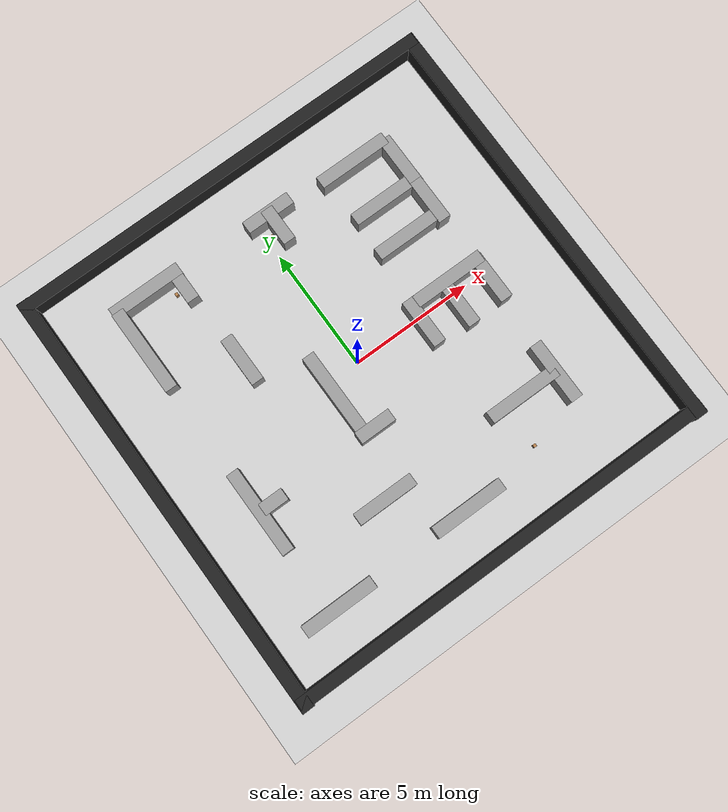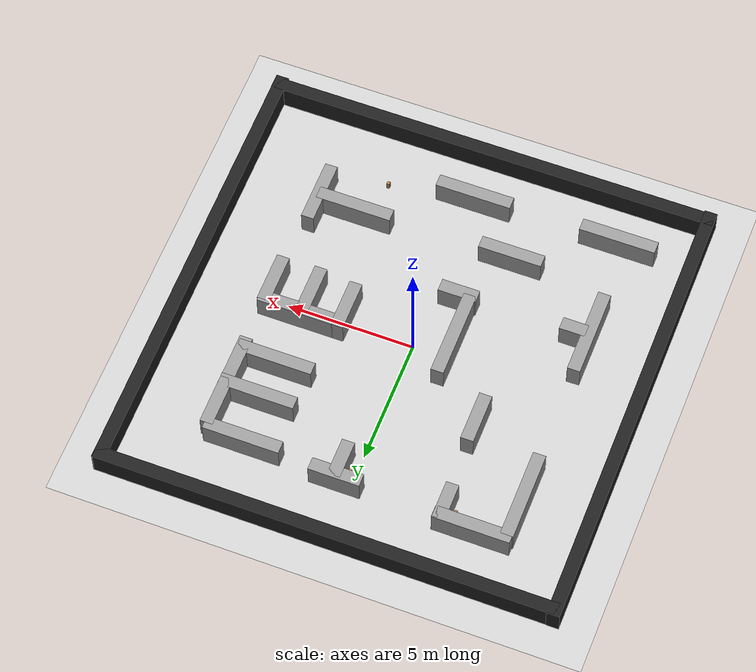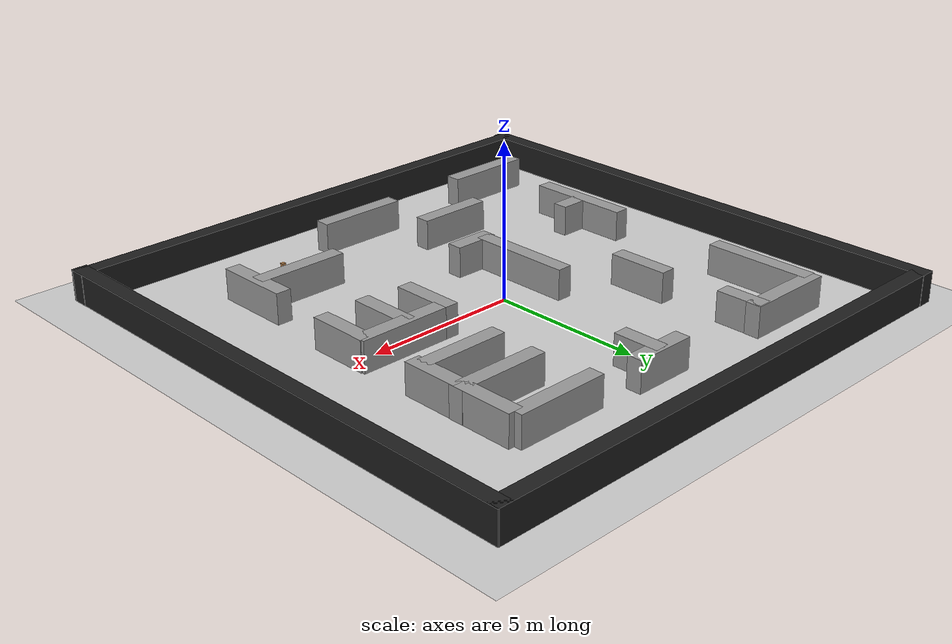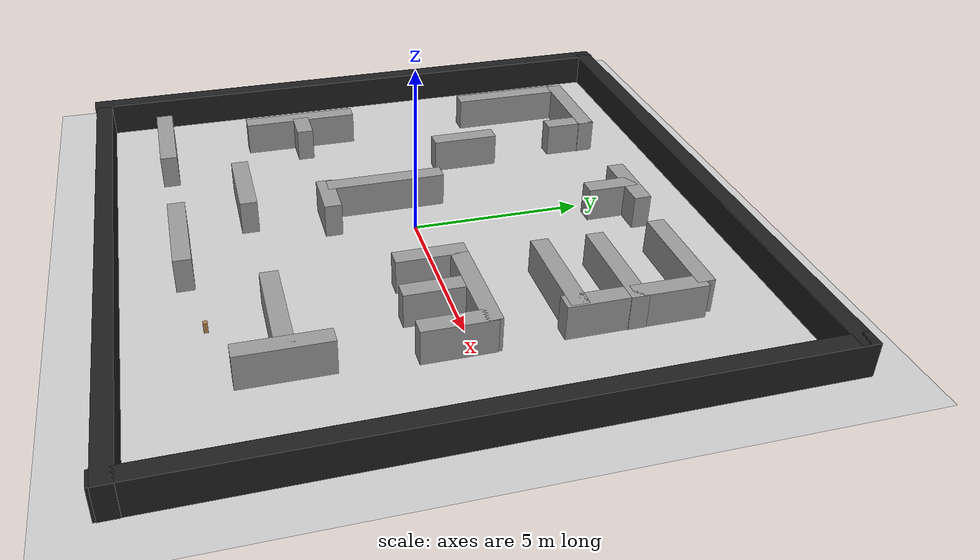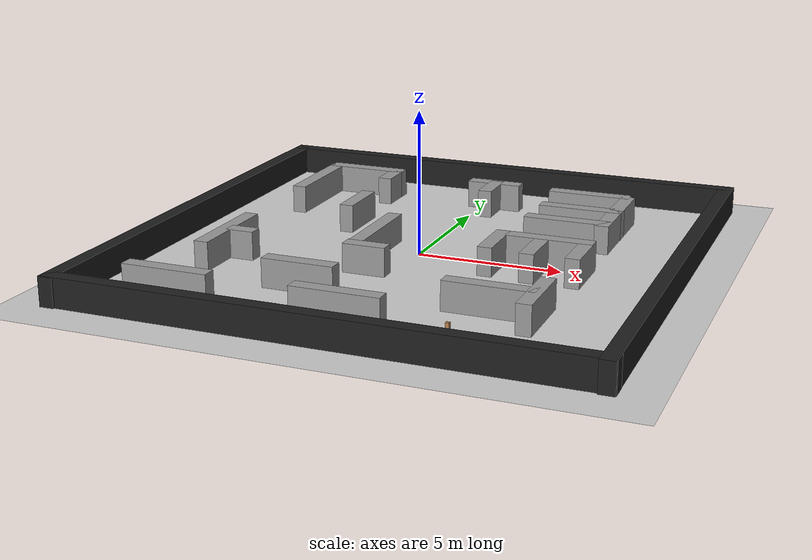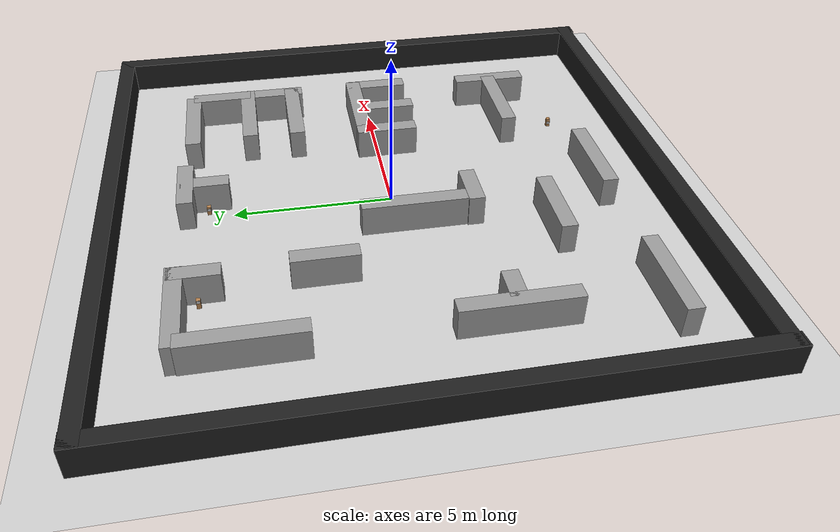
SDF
<sdf version="1.7">
 <world name="default">
  <light name="sun" type="directional">
   <pose>0 0 10 0 -0 0</pose>
   <diffuse>0.8 0.8 0.8 1</diffuse>
   <specular>0.2 0.2 0.2 1</specular>
   <attenuation>
    <range>1000</range>
    <constant>0.9</constant>
    <linear>0.01</linear>
    <quadratic>0.001</quadratic>
   </attenuation>
   <direction>-0.5 0.1 -0.9</direction>
   <spot><inner_angle>0</inner_angle><outer_angle>0</outer_angle><falloff>0</falloff></spot>
  </light>
  <model name="ground_plane">
   <static>1</static>
   <link name="link">
    <collision name="collision">
     <geometry><plane><normal>0 0 1</normal><size>100 100</size></plane></geometry>
     <surface><friction><ode><mu>100</mu><mu2>50</mu2></ode></friction></surface>
    </collision>
    <visual name="visual">
     <cast_shadows>0</cast_shadows>
     <geometry><plane><normal>0 0 1</normal><size>100 100</size></plane></geometry>
     <material>
      <script><uri>file://media/materials/scripts/gazebo.material</uri><name>Gazebo/Grey</name></script>
     </material>
    </visual>
   </link>
  </model>
  <gravity>0 0 -9.8</gravity>
  <magnetic_field>6e-06 2.3e-05 -4.2e-05</magnetic_field>
  <atmosphere type="adiabatic"/>
  <physics type="ode">
   <max_step_size>0.001</max_step_size>
   <real_time_factor>1</real_time_factor>
   <real_time_update_rate>1000</real_time_update_rate>
  </physics>
  <scene><ambient>0.4 0.4 0.4 1</ambient><background>0.7 0.7 0.7 1</background><shadows>1</shadows></scene>
  <audio><device>default</device></audio>
  <spherical_coordinates>
   <surface_model>EARTH_WGS84</surface_model>
   <latitude_deg>0</latitude_deg>
   <longitude_deg>0</longitude_deg>
   <elevation>0</elevation>
   <heading_deg>0</heading_deg>
  </spherical_coordinates>
  <model name="h5">
   <static>1</static>
   <pose>5.7234 5.19074 0.5 0 -0 0</pose>
   <link name="link">
    <inertial>
     <mass>1</mass>
     <inertia>
      <ixx>0.166667</ixx>
      <ixy>0</ixy>
      <ixz>0</ixz>
      <iyy>0.166667</iyy>
      <iyz>0</iyz>
      <izz>0.166667</izz>
     </inertia>
    </inertial>
    <collision name="collision"><geometry><box><size>0.5 2 1</size></box></geometry></collision>
    <visual name="visual">
     <geometry><box><size>0.5 2 1</size></box></geometry>
     <material>
      <script><name>Gazebo/Grey</name><uri>file://media/materials/scripts/gazebo.material</uri></script>
     </material>
    </visual>
   </link>
  </model>
  <model name="h6">
   <static>1</static>
   <pose>0.576546 5.8095 0.5 0 -0 0</pose>
   <link name="link">
    <inertial>
     <mass>1</mass>
     <inertia>
      <ixx>0.166667</ixx>
      <ixy>0</ixy>
      <ixz>0</ixz>
      <iyy>0.166667</iyy>
      <iyz>0</iyz>
      <izz>0.166667</izz>
     </inertia>
    </inertial>
    <collision name="collision"><geometry><box><size>0.5 1.5 1</size></box></geometry></collision>
    <visual name="visual">
     <geometry><box><size>0.5 1.5 1</size></box></geometry>
     <material>
      <script><name>Gazebo/Grey</name><uri>file://media/materials/scripts/gazebo.material</uri></script>
     </material>
    </visual>
   </link>
  </model>
  <model name="h7">
   <static>1</static>
   <pose>-3.57564 6.08723 0.5 0 -0 0</pose>
   <link name="link">
    <inertial>
     <mass>1</mass>
     <inertia>
      <ixx>0.166667</ixx>
      <ixy>0</ixy>
      <ixz>0</ixz>
      <iyy>0.166667</iyy>
      <iyz>0</iyz>
      <izz>0.166667</izz>
     </inertia>
    </inertial>
    <collision name="collision"><geometry><box><size>0.5 1.5 1</size></box></geometry></collision>
    <visual name="visual">
     <geometry><box><size>0.5 1.5 1</size></box></geometry>
     <material>
      <script><name>Gazebo/Grey</name><uri>file://media/materials/scripts/gazebo.material</uri></script>
     </material>
    </visual>
   </link>
  </model>
  <model name="h9">
   <static>1</static>
   <pose>5.57304 -4.62187 0.5 0 -0 0</pose>
   <link name="link">
    <inertial>
     <mass>1</mass>
     <inertia>
      <ixx>0.166667</ixx>
      <ixy>0</ixy>
      <ixz>0</ixz>
      <iyy>0.166667</iyy>
      <iyz>0</iyz>
      <izz>0.166667</izz>
     </inertia>
    </inertial>
    <collision name="collision"><geometry><box><size>0.5 2.5 1</size></box></geometry></collision>
    <visual name="visual">
     <geometry><box><size>0.5 2.5 1</size></box></geometry>
     <material>
      <script><name>Gazebo/Grey</name><uri>file://media/materials/scripts/gazebo.material</uri></script>
     </material>
    </visual>
   </link>
  </model>
  <model name="h10">
   <static>1</static>
   <pose>-1.39431 -0.583172 0.5 0 -0 0</pose>
   <link name="link">
    <inertial>
     <mass>1</mass>
     <inertia>
      <ixx>0.166667</ixx>
      <ixy>0</ixy>
      <ixz>0</ixz>
      <iyy>0.166667</iyy>
      <iyz>0</iyz>
      <izz>0.166667</izz>
     </inertia>
    </inertial>
    <collision name="collision"><geometry><box><size>0.5 3.5 1</size></box></geometry></collision>
    <visual name="visual">
     <geometry><box><size>0.5 3.5 1</size></box></geometry>
     <material>
      <script><name>Gazebo/Grey</name><uri>file://media/materials/scripts/gazebo.material</uri></script>
     </material>
    </visual>
   </link>
  </model>
  <model name="h11">
   <static>1</static>
   <pose>-3.41878 2.46589 0.5 0 -0 0</pose>
   <link name="link">
    <inertial>
     <mass>1</mass>
     <inertia>
      <ixx>0.166667</ixx>
      <ixy>0</ixy>
      <ixz>0</ixz>
      <iyy>0.166667</iyy>
      <iyz>0</iyz>
      <izz>0.166667</izz>
     </inertia>
    </inertial>
    <collision name="collision"><geometry><box><size>0.5 2 1</size></box></geometry></collision>
    <visual name="visual">
     <geometry><box><size>0.5 2 1</size></box></geometry>
     <material>
      <script><name>Gazebo/Grey</name><uri>file://media/materials/scripts/gazebo.material</uri></script>
     </material>
    </visual>
   </link>
  </model>
  <model name="v13">
   <static>1</static>
   <pose>-0.938635 -2.3681 0.5 0 -0 0</pose>
   <link name="link">
    <inertial>
     <mass>1</mass>
     <inertia>
      <ixx>0.166667</ixx>
      <ixy>0</ixy>
      <ixz>0</ixz>
      <iyy>0.166667</iyy>
      <iyz>0</iyz>
      <izz>0.166667</izz>
     </inertia>
    </inertial>
    <collision name="collision"><geometry><box><size>1.5 0.5 1</size></box></geometry></collision>
    <visual name="visual">
     <geometry><box><size>1.5 0.5 1</size></box></geometry>
     <material>
      <script><name>Gazebo/Grey</name><uri>file://media/materials/scripts/gazebo.material</uri></script>
     </material>
    </visual>
   </link>
  </model>
  <model name="v15">
   <static>1</static>
   <pose>0.54972 6.40187 0.5 0 -0 0</pose>
   <link name="link">
    <inertial>
     <mass>1</mass>
     <inertia>
      <ixx>0.166667</ixx>
      <ixy>0</ixy>
      <ixz>0</ixz>
      <iyy>0.166667</iyy>
      <iyz>0</iyz>
      <izz>0.166667</izz>
     </inertia>
    </inertial>
    <collision name="collision"><geometry><box><size>2 0.5 1</size></box></geometry></collision>
    <visual name="visual">
     <geometry><box><size>2 0.5 1</size></box></geometry>
     <material>
      <script><name>Gazebo/Grey</name><uri>file://media/materials/scripts/gazebo.material</uri></script>
     </material>
    </visual>
   </link>
  </model>
  <model name="v16">
   <static>1</static>
   <pose>4.10503 -4.57932 0.5 0 -0 0</pose>
   <link name="link">
    <inertial>
     <mass>1</mass>
     <inertia>
      <ixx>0.166667</ixx>
      <ixy>0</ixy>
      <ixz>0</ixz>
      <iyy>0.166667</iyy>
      <iyz>0</iyz>
      <izz>0.166667</izz>
     </inertia>
    </inertial>
    <collision name="collision"><geometry><box><size>3 0.5 1</size></box></geometry></collision>
    <visual name="visual">
     <geometry><box><size>3 0.5 1</size></box></geometry>
     <material>
      <script><name>Gazebo/Grey</name><uri>file://media/materials/scripts/gazebo.material</uri></script>
     </material>
    </visual>
   </link>
  </model>
  <model name="v18">
   <static>1</static>
   <pose>-2.19002 -4.69612 0.5 0 -0 0</pose>
   <link name="link">
    <inertial>
     <mass>1</mass>
     <inertia>
      <ixx>0.166667</ixx>
      <ixy>0</ixy>
      <ixz>0</ixz>
      <iyy>0.166667</iyy>
      <iyz>0</iyz>
      <izz>0.166667</izz>
     </inertia>
    </inertial>
    <collision name="collision"><geometry><box><size>2.5 0.5 1</size></box></geometry></collision>
    <visual name="visual">
     <geometry><box><size>2.5 0.5 1</size></box></geometry>
     <material>
      <script><name>Gazebo/Grey</name><uri>file://media/materials/scripts/gazebo.material</uri></script>
     </material>
    </visual>
   </link>
  </model>
  <model name="v20">
   <static>1</static>
   <pose>-5.48278 -2.41567 0.5 0 -0 0</pose>
   <link name="link">
    <inertial>
     <mass>1</mass>
     <inertia>
      <ixx>0.166667</ixx>
      <ixy>0</ixy>
      <ixz>0</ixz>
      <iyy>0.166667</iyy>
      <iyz>0</iyz>
      <izz>0.166667</izz>
     </inertia>
    </inertial>
    <collision name="collision"><geometry><box><size>1 0.5 1</size></box></geometry></collision>
    <visual name="visual">
     <geometry><box><size>1 0.5 1</size></box></geometry>
     <material>
      <script><name>Gazebo/Grey</name><uri>file://media/materials/scripts/gazebo.material</uri></script>
     </material>
    </visual>
   </link>
  </model>
  <model name="aruco_column_6x6_100mm_42">
   <link name="link">
    <pose>0 0 0.15 0 -0 0</pose>
    <inertial>
     <mass>1</mass>
     <inertia><ixx>1</ixx><ixy>0</ixy><ixz>0</ixz><iyy>1</iyy><iyz>0</iyz><izz>1</izz></inertia>
    </inertial>
    <collision name="collision">
     <geometry><box><size>0.12 0.12 0.3</size></box></geometry>
     <surface>
      <contact>
       <poissons_ratio>0.347</poissons_ratio>
       <elastic_modulus>8.8e+09</elastic_modulus>
       <ode><kp>100000</kp><kd>1</kd><max_vel>1</max_vel><min_depth>0.001</min_depth></ode>
      </contact>
      <friction>
       <torsional>
        <coefficient>1</coefficient>
        <use_patch_radius>0</use_patch_radius>
        <surface_radius>0.05</surface_radius>
       </torsional>
      </friction>
     </surface>
    </collision>
    <visual name="visual">
     <geometry><box><size>0.12 0.12 0.3</size></box></geometry>
     <material>
      <script><uri>file://media/materials/scripts/gazebo.material</uri><name>Gazebo/Wood</name></script>
     </material>
    </visual>
   </link>
   <link name="aruco_6x6_100mm_42::main">
    <pose relative_to="aruco_6x6_100mm_42::__model__">0 0 0 0 -0 0</pose>
    <visual name="main_Visual">
     <geometry><box><size>0.1 0.1 0.001</size></box></geometry>
     <material>
      <script>
       <uri>file://media/materials/scripts</uri>
       <uri>file://media/materials/textures</uri>
       <name>aruco_6x6_100mm_42</name>
      </script>
     </material>
    </visual>
    <inertial>
     <inertia><ixx>1</ixx><ixy>0</ixy><ixz>0</ixz><iyy>1</iyy><iyz>0</iyz><izz>1</izz></inertia>
     <mass>1</mass>
    </inertial>
   </link>
   <frame name="aruco_6x6_100mm_42::__model__" attached_to="aruco_6x6_100mm_42::main">
    <pose relative_to="__model__">-0.06 0 0.24 3.14159 1.57079 3.14159</pose>
   </frame>
   <joint name="aruco_6x6_100mm_42_joint" type="fixed">
    <child>aruco_6x6_100mm_42::main</child>
    <parent>link</parent>
   </joint>
   <pose>-3.95817 6.03807 -0.001049 0 -0.000405 0</pose>
  </model>
  <model name="aruco_column_6x6_100mm_2">
   <link name="link">
    <pose>0 0 0.15 0 -0 0</pose>
    <inertial>
     <mass>1</mass>
     <inertia><ixx>1</ixx><ixy>0</ixy><ixz>0</ixz><iyy>1</iyy><iyz>0</iyz><izz>1</izz></inertia>
    </inertial>
    <collision name="collision">
     <geometry><box><size>0.12 0.12 0.3</size></box></geometry>
     <surface>
      <contact>
       <poissons_ratio>0.347</poissons_ratio>
       <elastic_modulus>8.8e+09</elastic_modulus>
       <ode><kp>100000</kp><kd>1</kd><max_vel>1</max_vel><min_depth>0.001</min_depth></ode>
      </contact>
      <friction>
       <torsional>
        <coefficient>1</coefficient>
        <use_patch_radius>0</use_patch_radius>
        <surface_radius>0.05</surface_radius>
       </torsional>
      </friction>
     </surface>
    </collision>
    <visual name="visual">
     <geometry><box><size>0.12 0.12 0.3</size></box></geometry>
     <material>
      <script><uri>file://media/materials/scripts/gazebo.material</uri><name>Gazebo/Wood</name></script>
     </material>
    </visual>
   </link>
   <link name="aruco_6x6_100mm_2::main">
    <pose relative_to="aruco_6x6_100mm_2::__model__">0 0 0 0 -0 0</pose>
    <visual name="main_Visual">
     <geometry><box><size>0.1 0.1 0.001</size></box></geometry>
     <material>
      <script>
       <uri>file://media/materials/scripts</uri>
       <uri>file://media/materials/textures</uri>
       <name>aruco_6x6_100mm_2</name>
      </script>
     </material>
    </visual>
    <inertial>
     <inertia><ixx>1</ixx><ixy>0</ixy><ixz>0</ixz><iyy>1</iyy><iyz>0</iyz><izz>1</izz></inertia>
     <mass>1</mass>
    </inertial>
   </link>
   <frame name="aruco_6x6_100mm_2::__model__" attached_to="aruco_6x6_100mm_2::main">
    <pose relative_to="__model__">-0.06 0 0.14 3.14159 1.57079 3.14159</pose>
   </frame>
   <joint name="aruco_6x6_100mm_2_joint" type="fixed">
    <child>aruco_6x6_100mm_2::main</child>
    <parent>link</parent>
   </joint>
   <pose>3.41786 -6.3316 -0.001049 0 -0.000405 0</pose>
  </model>
  <model name="aruco_column_6x6_100mm_0">
   <link name="link">
    <pose>0 0 0.15 0 -0 0</pose>
    <inertial>
     <mass>1</mass>
     <inertia><ixx>1</ixx><ixy>0</ixy><ixz>0</ixz><iyy>1</iyy><iyz>0</iyz><izz>1</izz></inertia>
    </inertial>
    <collision name="collision">
     <geometry><box><size>0.12 0.12 0.3</size></box></geometry>
     <surface>
      <contact>
       <poissons_ratio>0.347</poissons_ratio>
       <elastic_modulus>8.8e+09</elastic_modulus>
       <ode><kp>100000</kp><kd>1</kd><max_vel>1</max_vel><min_depth>0.001</min_depth></ode>
      </contact>
      <friction>
       <torsional>
        <coefficient>1</coefficient>
        <use_patch_radius>0</use_patch_radius>
        <surface_radius>0.05</surface_radius>
       </torsional>
      </friction>
     </surface>
    </collision>
    <visual name="visual">
     <geometry><box><size>0.12 0.12 0.3</size></box></geometry>
     <material>
      <script><uri>file://media/materials/scripts/gazebo.material</uri><name>Gazebo/Wood</name></script>
     </material>
    </visual>
   </link>
   <link name="aruco_6x6_100mm_0::main">
    <pose relative_to="aruco_6x6_100mm_0::__model__">0 0 0 0 -0 0</pose>
    <visual name="main_Visual">
     <geometry><box><size>0.1 0.1 0.001</size></box></geometry>
     <material>
      <script>
       <uri>file://media/materials/scripts</uri>
       <uri>file://media/materials/textures</uri>
       <name>aruco_6x6_100mm_0</name>
      </script>
     </material>
    </visual>
    <inertial>
     <inertia><ixx>1</ixx><ixy>0</ixy><ixz>0</ixz><iyy>1</iyy><iyz>0</iyz><izz>1</izz></inertia>
     <mass>1</mass>
    </inertial>
   </link>
   <frame name="aruco_6x6_100mm_0::__model__" attached_to="aruco_6x6_100mm_0::main">
    <pose relative_to="__model__">-0.06 0 0.19 3.14159 1.57079 3.14159</pose>
   </frame>
   <joint name="aruco_6x6_100mm_0_joint" type="fixed">
    <child>aruco_6x6_100mm_0::main</child>
    <parent>link</parent>
   </joint>
   <pose>0.213147 5.75606 -0.001049 0 -0.000405 0</pose>
  </model>
  <model name="h10_clone">
   <static>1</static>
   <pose>-6.10193 4.84313 0.5 0 -0 0</pose>
   <link name="link">
    <inertial>
     <mass>1</mass>
     <inertia>
      <ixx>0.166667</ixx>
      <ixy>0</ixy>
      <ixz>0</ixz>
      <iyy>0.166667</iyy>
      <iyz>0</iyz>
      <izz>0.166667</izz>
     </inertia>
    </inertial>
    <collision name="collision"><geometry><box><size>0.5 3.5 1</size></box></geometry></collision>
    <visual name="visual">
     <geometry><box><size>0.5 3.5 1</size></box></geometry>
     <material>
      <script><name>Gazebo/Grey</name><uri>file://media/materials/scripts/gazebo.material</uri></script>
     </material>
    </visual>
   </link>
  </model>
  <model name="h10_clone_0">
   <static>1</static>
   <pose>-6.07685 -2.4237 0.5 0 -0 0</pose>
   <link name="link">
    <inertial>
     <mass>1</mass>
     <inertia>
      <ixx>0.166667</ixx>
      <ixy>0</ixy>
      <ixz>0</ixz>
      <iyy>0.166667</iyy>
      <iyz>0</iyz>
      <izz>0.166667</izz>
     </inertia>
    </inertial>
    <collision name="collision"><geometry><box><size>0.5 3.5 1</size></box></geometry></collision>
    <visual name="visual">
     <geometry><box><size>0.5 3.5 1</size></box></geometry>
     <material>
      <script><name>Gazebo/Grey</name><uri>file://media/materials/scripts/gazebo.material</uri></script>
     </material>
    </visual>
   </link>
  </model>
  <model name="v16_clone">
   <static>1</static>
   <pose>-5.73731 -6.78479 0.5 0 -0 0</pose>
   <link name="link">
    <inertial>
     <mass>1</mass>
     <inertia>
      <ixx>0.166667</ixx>
      <ixy>0</ixy>
      <ixz>0</ixz>
      <iyy>0.166667</iyy>
      <iyz>0</iyz>
      <izz>0.166667</izz>
     </inertia>
    </inertial>
    <collision name="collision"><geometry><box><size>3 0.5 1</size></box></geometry></collision>
    <visual name="visual">
     <geometry><box><size>3 0.5 1</size></box></geometry>
     <material>
      <script><name>Gazebo/Grey</name><uri>file://media/materials/scripts/gazebo.material</uri></script>
     </material>
    </visual>
   </link>
  </model>
  <model name="v16_clone_0">
   <static>1</static>
   <pose>0.036909 -6.71651 0.5 0 -0 0</pose>
   <link name="link">
    <inertial>
     <mass>1</mass>
     <inertia>
      <ixx>0.166667</ixx>
      <ixy>0</ixy>
      <ixz>0</ixz>
      <iyy>0.166667</iyy>
      <iyz>0</iyz>
      <izz>0.166667</izz>
     </inertia>
    </inertial>
    <collision name="collision"><geometry><box><size>3 0.5 1</size></box></geometry></collision>
    <visual name="visual">
     <geometry><box><size>3 0.5 1</size></box></geometry>
     <material>
      <script><name>Gazebo/Grey</name><uri>file://media/materials/scripts/gazebo.material</uri></script>
     </material>
    </visual>
   </link>
  </model>
  <model name="h5_clone">
   <static>1</static>
   <pose>4.24781 -0.463245 0.5 0 -0 0</pose>
   <link name="link">
    <inertial>
     <mass>1</mass>
     <inertia>
      <ixx>0.166667</ixx>
      <ixy>0</ixy>
      <ixz>0</ixz>
      <iyy>0.166667</iyy>
      <iyz>0</iyz>
      <izz>0.166667</izz>
     </inertia>
    </inertial>
    <collision name="collision"><geometry><box><size>0.5 2 1</size></box></geometry></collision>
    <visual name="visual">
     <geometry><box><size>0.5 2 1</size></box></geometry>
     <material>
      <script><name>Gazebo/Grey</name><uri>file://media/materials/scripts/gazebo.material</uri></script>
     </material>
    </visual>
   </link>
  </model>
  <model name="v16_clone_0_clone">
   <static>1</static>
   <pose>-4.81128 6.62469 0.5 0 -0 0</pose>
   <link name="link">
    <inertial>
     <mass>1</mass>
     <inertia>
      <ixx>0.166667</ixx>
      <ixy>0</ixy>
      <ixz>0</ixz>
      <iyy>0.166667</iyy>
      <iyz>0</iyz>
      <izz>0.166667</izz>
     </inertia>
    </inertial>
    <collision name="collision"><geometry><box><size>3 0.5 1</size></box></geometry></collision>
    <visual name="visual">
     <geometry><box><size>3 0.5 1</size></box></geometry>
     <material>
      <script><name>Gazebo/Grey</name><uri>file://media/materials/scripts/gazebo.material</uri></script>
     </material>
    </visual>
   </link>
  </model>
  <model name="long_wall">
   <link name="link">
    <inertial>
     <mass>1</mass>
     <inertia>
      <ixx>0.166667</ixx>
      <ixy>0</ixy>
      <ixz>0</ixz>
      <iyy>0.166667</iyy>
      <iyz>0</iyz>
      <izz>0.166667</izz>
     </inertia>
    </inertial>
    <visual name="visual">
     <geometry><box><size>18 0.5 1</size></box></geometry>
     <material>
      <script><name>Gazebo/Black</name><uri>file://media/materials/scripts/gazebo.material</uri></script>
      <shader type="pixel"><normal_map>__default__</normal_map></shader>
      <ambient>0 0 0 1</ambient>
      <diffuse>0 0 0 1</diffuse>
      <specular>0.1 0.1 0.1 1</specular>
      <emissive>0 0 0 1</emissive>
     </material>
    </visual>
    <collision name="collision">
     <geometry><box><size>18 0.5 1</size></box></geometry>
     <surface>
      <friction>
       <ode><mu>1</mu><mu2>1</mu2><fdir1>0 0 0</fdir1><slip1>0</slip1><slip2>0</slip2></ode>
       <torsional>
        <coefficient>1</coefficient>
        <patch_radius>0</patch_radius>
        <surface_radius>0</surface_radius>
        <use_patch_radius>1</use_patch_radius>
        <ode><slip>0</slip></ode>
       </torsional>
      </friction>
      <bounce><restitution_coefficient>0</restitution_coefficient><threshold>1e+06</threshold></bounce>
      <contact>
       <collide_without_contact>0</collide_without_contact>
       <collide_without_contact_bitmask>1</collide_without_contact_bitmask>
       <collide_bitmask>1</collide_bitmask>
       <ode>
        <soft_cfm>0</soft_cfm>
        <soft_erp>0.2</soft_erp>
        <kp>1e+13</kp>
        <kd>1</kd>
        <max_vel>0.01</max_vel>
        <min_depth>0</min_depth>
       </ode>
       <bullet>
        <split_impulse>1</split_impulse>
        <split_impulse_penetration_threshold>-0.01</split_impulse_penetration_threshold>
        <soft_cfm>0</soft_cfm>
        <soft_erp>0.2</soft_erp>
        <kp>1e+13</kp>
        <kd>1</kd>
       </bullet>
      </contact>
     </surface>
    </collision>
   </link>
   <static>1</static>
   <pose>0.041978 8.71884 0.5 0 -0 0</pose>
  </model>
  <model name="long_wall_clone">
   <link name="link">
    <inertial>
     <mass>1</mass>
     <inertia>
      <ixx>0.166667</ixx>
      <ixy>0</ixy>
      <ixz>0</ixz>
      <iyy>0.166667</iyy>
      <iyz>0</iyz>
      <izz>0.166667</izz>
     </inertia>
    </inertial>
    <visual name="visual">
     <geometry><box><size>18 0.5 1</size></box></geometry>
     <material>
      <script><name>Gazebo/Black</name><uri>file://media/materials/scripts/gazebo.material</uri></script>
      <shader type="pixel"><normal_map>__default__</normal_map></shader>
      <ambient>0 0 0 1</ambient>
      <diffuse>0 0 0 1</diffuse>
      <specular>0.1 0.1 0.1 1</specular>
      <emissive>0 0 0 1</emissive>
     </material>
    </visual>
    <collision name="collision">
     <geometry><box><size>18 0.5 1</size></box></geometry>
     <surface>
      <friction>
       <ode><mu>1</mu><mu2>1</mu2><fdir1>0 0 0</fdir1><slip1>0</slip1><slip2>0</slip2></ode>
       <torsional>
        <coefficient>1</coefficient>
        <patch_radius>0</patch_radius>
        <surface_radius>0</surface_radius>
        <use_patch_radius>1</use_patch_radius>
        <ode><slip>0</slip></ode>
       </torsional>
      </friction>
      <bounce><restitution_coefficient>0</restitution_coefficient><threshold>1e+06</threshold></bounce>
      <contact>
       <collide_without_contact>0</collide_without_contact>
       <collide_without_contact_bitmask>1</collide_without_contact_bitmask>
       <collide_bitmask>1</collide_bitmask>
       <ode>
        <soft_cfm>0</soft_cfm>
        <soft_erp>0.2</soft_erp>
        <kp>1e+13</kp>
        <kd>1</kd>
        <max_vel>0.01</max_vel>
        <min_depth>0</min_depth>
       </ode>
       <bullet>
        <split_impulse>1</split_impulse>
        <split_impulse_penetration_threshold>-0.01</split_impulse_penetration_threshold>
        <soft_cfm>0</soft_cfm>
        <soft_erp>0.2</soft_erp>
        <kp>1e+13</kp>
        <kd>1</kd>
       </bullet>
      </contact>
     </surface>
    </collision>
   </link>
   <static>1</static>
   <pose>0.120203 -8.71207 0.5 0 -0 0</pose>
  </model>
  <model name="long_wall_horizontal">
   <link name="link">
    <inertial>
     <mass>1</mass>
     <inertia>
      <ixx>0.166667</ixx>
      <ixy>0</ixy>
      <ixz>0</ixz>
      <iyy>0.166667</iyy>
      <iyz>0</iyz>
      <izz>0.166667</izz>
     </inertia>
    </inertial>
    <visual name="visual">
     <geometry><box><size>18 0.5 1</size></box></geometry>
     <material>
      <script><name>Gazebo/Black</name><uri>file://media/materials/scripts/gazebo.material</uri></script>
      <shader type="pixel"><normal_map>__default__</normal_map></shader>
      <ambient>0 0 0 1</ambient>
      <diffuse>0 0 0 1</diffuse>
      <specular>0.1 0.1 0.1 1</specular>
      <emissive>0 0 0 1</emissive>
     </material>
    </visual>
    <collision name="collision">
     <geometry><box><size>18 0.5 1</size></box></geometry>
     <surface>
      <friction>
       <ode><mu>1</mu><mu2>1</mu2><fdir1>0 0 0</fdir1><slip1>0</slip1><slip2>0</slip2></ode>
       <torsional>
        <coefficient>1</coefficient>
        <patch_radius>0</patch_radius>
        <surface_radius>0</surface_radius>
        <use_patch_radius>1</use_patch_radius>
        <ode><slip>0</slip></ode>
       </torsional>
      </friction>
      <bounce><restitution_coefficient>0</restitution_coefficient><threshold>1e+06</threshold></bounce>
      <contact>
       <collide_without_contact>0</collide_without_contact>
       <collide_without_contact_bitmask>1</collide_without_contact_bitmask>
       <collide_bitmask>1</collide_bitmask>
       <ode>
        <soft_cfm>0</soft_cfm>
        <soft_erp>0.2</soft_erp>
        <kp>1e+13</kp>
        <kd>1</kd>
        <max_vel>0.01</max_vel>
        <min_depth>0</min_depth>
       </ode>
       <bullet>
        <split_impulse>1</split_impulse>
        <split_impulse_penetration_threshold>-0.01</split_impulse_penetration_threshold>
        <soft_cfm>0</soft_cfm>
        <soft_erp>0.2</soft_erp>
        <kp>1e+13</kp>
        <kd>1</kd>
       </bullet>
      </contact>
     </surface>
    </collision>
   </link>
   <static>1</static>
   <pose>8.84119 -0.034838 0.5 0 0 -1.56864</pose>
  </model>
  <model name="long_wall_horizontal_clone">
   <link name="link">
    <inertial>
     <mass>1</mass>
     <inertia>
      <ixx>0.166667</ixx>
      <ixy>0</ixy>
      <ixz>0</ixz>
      <iyy>0.166667</iyy>
      <iyz>0</iyz>
      <izz>0.166667</izz>
     </inertia>
    </inertial>
    <visual name="visual">
     <geometry><box><size>18 0.5 1</size></box></geometry>
     <material>
      <script><name>Gazebo/Black</name><uri>file://media/materials/scripts/gazebo.material</uri></script>
      <shader type="pixel"><normal_map>__default__</normal_map></shader>
      <ambient>0 0 0 1</ambient>
      <diffuse>0 0 0 1</diffuse>
      <specular>0.1 0.1 0.1 1</specular>
      <emissive>0 0 0 1</emissive>
     </material>
    </visual>
    <collision name="collision">
     <geometry><box><size>18 0.5 1</size></box></geometry>
     <surface>
      <friction>
       <ode><mu>1</mu><mu2>1</mu2><fdir1>0 0 0</fdir1><slip1>0</slip1><slip2>0</slip2></ode>
       <torsional>
        <coefficient>1</coefficient>
        <patch_radius>0</patch_radius>
        <surface_radius>0</surface_radius>
        <use_patch_radius>1</use_patch_radius>
        <ode><slip>0</slip></ode>
       </torsional>
      </friction>
      <bounce><restitution_coefficient>0</restitution_coefficient><threshold>1e+06</threshold></bounce>
      <contact>
       <collide_without_contact>0</collide_without_contact>
       <collide_without_contact_bitmask>1</collide_without_contact_bitmask>
       <collide_bitmask>1</collide_bitmask>
       <ode>
        <soft_cfm>0</soft_cfm>
        <soft_erp>0.2</soft_erp>
        <kp>1e+13</kp>
        <kd>1</kd>
        <max_vel>0.01</max_vel>
        <min_depth>0</min_depth>
       </ode>
       <bullet>
        <split_impulse>1</split_impulse>
        <split_impulse_penetration_threshold>-0.01</split_impulse_penetration_threshold>
        <soft_cfm>0</soft_cfm>
        <soft_erp>0.2</soft_erp>
        <kp>1e+13</kp>
        <kd>1</kd>
       </bullet>
      </contact>
     </surface>
    </collision>
   </link>
   <static>1</static>
   <pose>-8.69117 -0.02091 0.5 0 0 -1.56864</pose>
  </model>
  <model name="v16_clone_0_clone_clone">
   <static>1</static>
   <pose>4.28063 6.19065 0.5 0 -0 0</pose>
   <link name="link">
    <inertial>
     <mass>1</mass>
     <inertia>
      <ixx>0.166667</ixx>
      <ixy>0</ixy>
      <ixz>0</ixz>
      <iyy>0.166667</iyy>
      <iyz>0</iyz>
      <izz>0.166667</izz>
     </inertia>
    </inertial>
    <collision name="collision"><geometry><box><size>3 0.5 1</size></box></geometry></collision>
    <visual name="visual">
     <geometry><box><size>3 0.5 1</size></box></geometry>
     <material>
      <script><name>Gazebo/Grey</name><uri>file://media/materials/scripts/gazebo.material</uri></script>
     </material>
    </visual>
   </link>
  </model>
  <model name="h5_clone_clone">
   <static>1</static>
   <pose>5.75674 -0.412688 0.5 0 -0 0</pose>
   <link name="link">
    <inertial>
     <mass>1</mass>
     <inertia>
      <ixx>0.166667</ixx>
      <ixy>0</ixy>
      <ixz>0</ixz>
      <iyy>0.166667</iyy>
      <iyz>0</iyz>
      <izz>0.166667</izz>
     </inertia>
    </inertial>
    <collision name="collision"><geometry><box><size>0.5 2 1</size></box></geometry></collision>
    <visual name="visual">
     <geometry><box><size>0.5 2 1</size></box></geometry>
     <material>
      <script><name>Gazebo/Grey</name><uri>file://media/materials/scripts/gazebo.material</uri></script>
     </material>
    </visual>
   </link>
  </model>
  <model name="v16_clone_0_clone_0">
   <static>1</static>
   <pose>4.4786 0.445254 0.5 0 -0 0</pose>
   <link name="link">
    <inertial>
     <mass>1</mass>
     <inertia>
      <ixx>0.166667</ixx>
      <ixy>0</ixy>
      <ixz>0</ixz>
      <iyy>0.166667</iyy>
      <iyz>0</iyz>
      <izz>0.166667</izz>
     </inertia>
    </inertial>
    <collision name="collision"><geometry><box><size>3 0.5 1</size></box></geometry></collision>
    <visual name="visual">
     <geometry><box><size>3 0.5 1</size></box></geometry>
     <material>
      <script><name>Gazebo/Grey</name><uri>file://media/materials/scripts/gazebo.material</uri></script>
     </material>
    </visual>
   </link>
  </model>
  <model name="v16_clone_0_clone_clone_clone">
   <static>1</static>
   <pose>4.47891 4.28912 0.5 0 -0 0</pose>
   <link name="link">
    <inertial>
     <mass>1</mass>
     <inertia>
      <ixx>0.166667</ixx>
      <ixy>0</ixy>
      <ixz>0</ixz>
      <iyy>0.166667</iyy>
      <iyz>0</iyz>
      <izz>0.166667</izz>
     </inertia>
    </inertial>
    <collision name="collision"><geometry><box><size>3 0.5 1</size></box></geometry></collision>
    <visual name="visual">
     <geometry><box><size>3 0.5 1</size></box></geometry>
     <material>
      <script><name>Gazebo/Grey</name><uri>file://media/materials/scripts/gazebo.material</uri></script>
     </material>
    </visual>
   </link>
  </model>
  <model name="h5_clone_0">
   <static>1</static>
   <pose>5.71615 3.3409 0.5 0 -0 0</pose>
   <link name="link">
    <inertial>
     <mass>1</mass>
     <inertia>
      <ixx>0.166667</ixx>
      <ixy>0</ixy>
      <ixz>0</ixz>
      <iyy>0.166667</iyy>
      <iyz>0</iyz>
      <izz>0.166667</izz>
     </inertia>
    </inertial>
    <collision name="collision"><geometry><box><size>0.5 2 1</size></box></geometry></collision>
    <visual name="visual">
     <geometry><box><size>0.5 2 1</size></box></geometry>
     <material>
      <script><name>Gazebo/Grey</name><uri>file://media/materials/scripts/gazebo.material</uri></script>
     </material>
    </visual>
   </link>
  </model>
  <model name="v16_clone_0_clone_clone_clone_clone">
   <static>1</static>
   <pose>4.40735 2.71398 0.5 0 -0 0</pose>
   <link name="link">
    <inertial>
     <mass>1</mass>
     <inertia>
      <ixx>0.166667</ixx>
      <ixy>0</ixy>
      <ixz>0</ixz>
      <iyy>0.166667</iyy>
      <iyz>0</iyz>
      <izz>0.166667</izz>
     </inertia>
    </inertial>
    <collision name="collision"><geometry><box><size>3 0.5 1</size></box></geometry></collision>
    <visual name="visual">
     <geometry><box><size>3 0.5 1</size></box></geometry>
     <material>
      <script><name>Gazebo/Grey</name><uri>file://media/materials/scripts/gazebo.material</uri></script>
     </material>
    </visual>
   </link>
  </model>
  <model name="h5_clone_clone_clone">
   <static>1</static>
   <pose>2.7789 -0.305408 0.5 0 -0 0</pose>
   <link name="link">
    <inertial>
     <mass>1</mass>
     <inertia>
      <ixx>0.166667</ixx>
      <ixy>0</ixy>
      <ixz>0</ixz>
      <iyy>0.166667</iyy>
      <iyz>0</iyz>
      <izz>0.166667</izz>
     </inertia>
    </inertial>
    <collision name="collision"><geometry><box><size>0.5 2 1</size></box></geometry></collision>
    <visual name="visual">
     <geometry><box><size>0.5 2 1</size></box></geometry>
     <material>
      <script><name>Gazebo/Grey</name><uri>file://media/materials/scripts/gazebo.material</uri></script>
     </material>
    </visual>
   </link>
  </model>
 </world>
</sdf>
